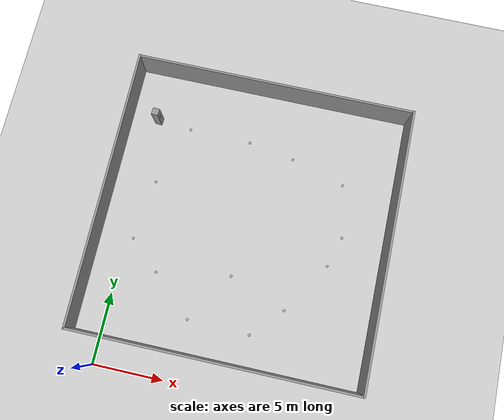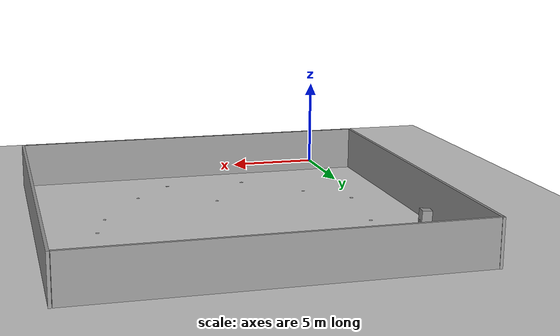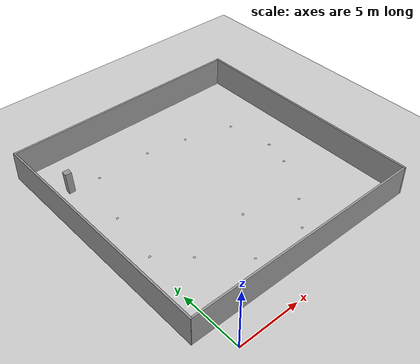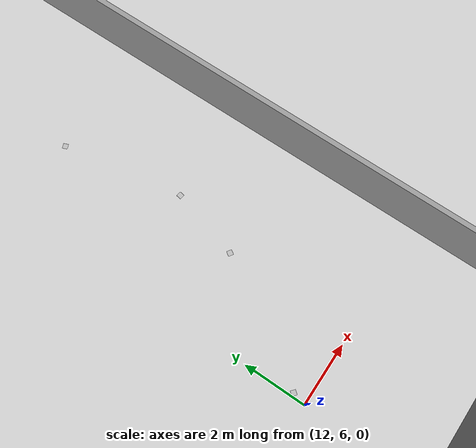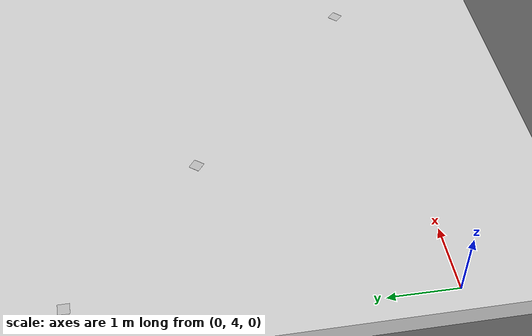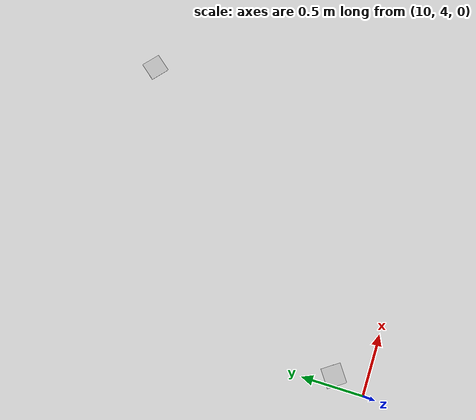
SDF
<sdf version="1.6">
 <world name="default">
  <model name="ground_plane">
   <static>1</static>
   <link name="link">
    <collision name="collision">
     <geometry><plane><normal>0 0 1</normal><size>100 100</size></plane></geometry>
     <surface>
      <contact><collide_bitmask>65535</collide_bitmask></contact>
      <friction><ode><mu>100</mu><mu2>50</mu2></ode></friction>
     </surface>
    </collision>
    <visual name="visual">
     <cast_shadows>0</cast_shadows>
     <geometry><plane><normal>0 0 1</normal><size>100 100</size></plane></geometry>
     <material>
      <script><uri>file://media/materials/scripts/gazebo.material</uri><name>Gazebo/Grey</name></script>
     </material>
    </visual>
   </link>
  </model>
  <light name="sun" type="directional">
   <pose>0 0 10 0 -0 0</pose>
   <diffuse>0.8 0.8 0.8 1</diffuse>
   <specular>0.2 0.2 0.2 1</specular>
   <attenuation>
    <range>1000</range>
    <constant>0.9</constant>
    <linear>0.01</linear>
    <quadratic>0.001</quadratic>
   </attenuation>
   <direction>-0.5 0.1 -0.9</direction>
  </light>
  <gravity>0 0 -9.8</gravity>
  <magnetic_field>6e-06 2.3e-05 -4.2e-05</magnetic_field>
  <atmosphere type="adiabatic"/>
  <physics name="default_physics" default="0" type="ode">
   <max_step_size>0.001</max_step_size>
   <real_time_factor>1</real_time_factor>
   <real_time_update_rate>1000</real_time_update_rate>
  </physics>
  <scene><ambient>0.4 0.4 0.4 1</ambient><background>0.7 0.7 0.7 1</background><shadows>1</shadows></scene>
  <audio><device>default</device></audio>
  <spherical_coordinates>
   <surface_model>EARTH_WGS84</surface_model>
   <latitude_deg>0</latitude_deg>
   <longitude_deg>0</longitude_deg>
   <elevation>0</elevation>
   <heading_deg>0</heading_deg>
  </spherical_coordinates>
  <model name="testbuilding">
   <link name="Wall_15">
    <pose>-5.52087 -13.8562 0 0 -0 3.14159</pose>
    <inertial>
     <mass>1</mass>
     <inertia><ixx>1</ixx><ixy>0</ixy><ixz>0</ixz><iyy>1</iyy><iyz>0</iyz><izz>1</izz></inertia>
    </inertial>
    <visual name="Wall_15_Visual">
     <pose>0 0 1.25 0 -0 0</pose>
     <geometry><box><size>20 0.15 2.5</size></box></geometry>
     <material>
      <script><uri>file://media/materials/scripts/gazebo.material</uri><name>Gazebo/Grey</name></script>
      <ambient>1 1 1 1</ambient>
      <shader type="vertex"><normal_map>__default__</normal_map></shader>
      <diffuse>0.7 0.7 0.7 1</diffuse>
      <specular>0.01 0.01 0.01 1</specular>
      <emissive>0 0 0 1</emissive>
     </material>
     <meta><layer>0</layer></meta>
    </visual>
    <collision name="Wall_15_Collision">
     <pose>0 0 1.25 0 -0 0</pose>
     <geometry><box><size>20 0.15 2.5</size></box></geometry>
     <surface>
      <friction>
       <ode><mu>1</mu><mu2>1</mu2><fdir1>0 0 0</fdir1><slip1>0</slip1><slip2>0</slip2></ode>
       <torsional>
        <coefficient>1</coefficient>
        <patch_radius>0</patch_radius>
        <surface_radius>0</surface_radius>
        <use_patch_radius>1</use_patch_radius>
        <ode><slip>0</slip></ode>
       </torsional>
      </friction>
      <bounce><restitution_coefficient>0</restitution_coefficient><threshold>1e+06</threshold></bounce>
      <contact>
       <collide_without_contact>0</collide_without_contact>
       <collide_without_contact_bitmask>1</collide_without_contact_bitmask>
       <collide_bitmask>1</collide_bitmask>
       <ode>
        <soft_cfm>0</soft_cfm>
        <soft_erp>0.2</soft_erp>
        <kp>1e+13</kp>
        <kd>1</kd>
        <max_vel>0.01</max_vel>
        <min_depth>0</min_depth>
       </ode>
       <bullet>
        <split_impulse>1</split_impulse>
        <split_impulse_penetration_threshold>-0.01</split_impulse_penetration_threshold>
        <soft_cfm>0</soft_cfm>
        <soft_erp>0.2</soft_erp>
        <kp>1e+13</kp>
        <kd>1</kd>
       </bullet>
      </contact>
     </surface>
    </collision>
   </link>
   <link name="Wall_15_clone">
    <pose>-5.54298 5.97578 0 0 -0 3.14159</pose>
    <inertial>
     <mass>1</mass>
     <inertia><ixx>1</ixx><ixy>0</ixy><ixz>0</ixz><iyy>1</iyy><iyz>0</iyz><izz>1</izz></inertia>
    </inertial>
    <visual name="Wall_15_Visual">
     <pose>0 0 1.25 0 -0 0</pose>
     <geometry><box><size>20 0.15 2.5</size></box></geometry>
     <material>
      <script><uri>file://media/materials/scripts/gazebo.material</uri><name>Gazebo/Grey</name></script>
      <ambient>1 1 1 1</ambient>
      <shader type="vertex"><normal_map>__default__</normal_map></shader>
      <diffuse>0.7 0.7 0.7 1</diffuse>
      <specular>0.01 0.01 0.01 1</specular>
      <emissive>0 0 0 1</emissive>
     </material>
     <meta><layer>0</layer></meta>
    </visual>
    <collision name="Wall_15_Collision">
     <pose>0 0 1.25 0 -0 0</pose>
     <geometry><box><size>20 0.15 2.5</size></box></geometry>
     <surface>
      <friction>
       <ode><mu>1</mu><mu2>1</mu2><fdir1>0 0 0</fdir1><slip1>0</slip1><slip2>0</slip2></ode>
       <torsional>
        <coefficient>1</coefficient>
        <patch_radius>0</patch_radius>
        <surface_radius>0</surface_radius>
        <use_patch_radius>1</use_patch_radius>
        <ode><slip>0</slip></ode>
       </torsional>
      </friction>
      <bounce><restitution_coefficient>0</restitution_coefficient><threshold>1e+06</threshold></bounce>
      <contact>
       <collide_without_contact>0</collide_without_contact>
       <collide_without_contact_bitmask>1</collide_without_contact_bitmask>
       <collide_bitmask>1</collide_bitmask>
       <ode>
        <soft_cfm>0</soft_cfm>
        <soft_erp>0.2</soft_erp>
        <kp>1e+13</kp>
        <kd>1</kd>
        <max_vel>0.01</max_vel>
        <min_depth>0</min_depth>
       </ode>
       <bullet>
        <split_impulse>1</split_impulse>
        <split_impulse_penetration_threshold>-0.01</split_impulse_penetration_threshold>
        <soft_cfm>0</soft_cfm>
        <soft_erp>0.2</soft_erp>
        <kp>1e+13</kp>
        <kd>1</kd>
       </bullet>
      </contact>
     </surface>
    </collision>
   </link>
   <link name="Wall_15_clone_clone">
    <pose>4.55954 -3.92992 0 0 -0 1.5708</pose>
    <inertial>
     <mass>1</mass>
     <inertia><ixx>1</ixx><ixy>0</ixy><ixz>0</ixz><iyy>1</iyy><iyz>0</iyz><izz>1</izz></inertia>
    </inertial>
    <visual name="Wall_15_Visual">
     <pose>0 0 1.25 0 -0 0</pose>
     <geometry><box><size>20 0.15 2.5</size></box></geometry>
     <material>
      <script><uri>file://media/materials/scripts/gazebo.material</uri><name>Gazebo/Grey</name></script>
      <ambient>1 1 1 1</ambient>
      <shader type="vertex"><normal_map>__default__</normal_map></shader>
      <diffuse>0.7 0.7 0.7 1</diffuse>
      <specular>0.01 0.01 0.01 1</specular>
      <emissive>0 0 0 1</emissive>
     </material>
     <meta><layer>0</layer></meta>
    </visual>
    <collision name="Wall_15_Collision">
     <pose>0 0 1.25 0 -0 0</pose>
     <geometry><box><size>20 0.15 2.5</size></box></geometry>
     <surface>
      <friction>
       <ode><mu>1</mu><mu2>1</mu2><fdir1>0 0 0</fdir1><slip1>0</slip1><slip2>0</slip2></ode>
       <torsional>
        <coefficient>1</coefficient>
        <patch_radius>0</patch_radius>
        <surface_radius>0</surface_radius>
        <use_patch_radius>1</use_patch_radius>
        <ode><slip>0</slip></ode>
       </torsional>
      </friction>
      <bounce><restitution_coefficient>0</restitution_coefficient><threshold>1e+06</threshold></bounce>
      <contact>
       <collide_without_contact>0</collide_without_contact>
       <collide_without_contact_bitmask>1</collide_without_contact_bitmask>
       <collide_bitmask>1</collide_bitmask>
       <ode>
        <soft_cfm>0</soft_cfm>
        <soft_erp>0.2</soft_erp>
        <kp>1e+13</kp>
        <kd>1</kd>
        <max_vel>0.01</max_vel>
        <min_depth>0</min_depth>
       </ode>
       <bullet>
        <split_impulse>1</split_impulse>
        <split_impulse_penetration_threshold>-0.01</split_impulse_penetration_threshold>
        <soft_cfm>0</soft_cfm>
        <soft_erp>0.2</soft_erp>
        <kp>1e+13</kp>
        <kd>1</kd>
       </bullet>
      </contact>
     </surface>
    </collision>
   </link>
   <link name="Wall_15_clone_clone_clone">
    <pose>-15.4862 -3.92822 0 0 -0 1.5708</pose>
    <inertial>
     <mass>1</mass>
     <inertia><ixx>1</ixx><ixy>0</ixy><ixz>0</ixz><iyy>1</iyy><iyz>0</iyz><izz>1</izz></inertia>
    </inertial>
    <visual name="Wall_15_Visual">
     <pose>0 0 1.25 0 -0 0</pose>
     <geometry><box><size>20 0.15 2.5</size></box></geometry>
     <material>
      <script><uri>file://media/materials/scripts/gazebo.material</uri><name>Gazebo/Grey</name></script>
      <ambient>1 1 1 1</ambient>
      <shader type="vertex"><normal_map>__default__</normal_map></shader>
      <diffuse>0.7 0.7 0.7 1</diffuse>
      <specular>0.01 0.01 0.01 1</specular>
      <emissive>0 0 0 1</emissive>
     </material>
     <meta><layer>0</layer></meta>
    </visual>
    <collision name="Wall_15_Collision">
     <pose>0 0 1.25 0 -0 0</pose>
     <geometry><box><size>20 0.15 2.5</size></box></geometry>
     <surface>
      <friction>
       <ode><mu>1</mu><mu2>1</mu2><fdir1>0 0 0</fdir1><slip1>0</slip1><slip2>0</slip2></ode>
       <torsional>
        <coefficient>1</coefficient>
        <patch_radius>0</patch_radius>
        <surface_radius>0</surface_radius>
        <use_patch_radius>1</use_patch_radius>
        <ode><slip>0</slip></ode>
       </torsional>
      </friction>
      <bounce><restitution_coefficient>0</restitution_coefficient><threshold>1e+06</threshold></bounce>
      <contact>
       <collide_without_contact>0</collide_without_contact>
       <collide_without_contact_bitmask>1</collide_without_contact_bitmask>
       <collide_bitmask>1</collide_bitmask>
       <ode>
        <soft_cfm>0</soft_cfm>
        <soft_erp>0.2</soft_erp>
        <kp>1e+13</kp>
        <kd>1</kd>
        <max_vel>0.01</max_vel>
        <min_depth>0</min_depth>
       </ode>
       <bullet>
        <split_impulse>1</split_impulse>
        <split_impulse_penetration_threshold>-0.01</split_impulse_penetration_threshold>
        <soft_cfm>0</soft_cfm>
        <soft_erp>0.2</soft_erp>
        <kp>1e+13</kp>
        <kd>1</kd>
       </bullet>
      </contact>
     </surface>
    </collision>
   </link>
   <static>1</static>
   <pose>13.5614 15.9012 -0.099989 0 -0 0</pose>
  </model>
  <model name="Tag0">
   <static>1</static>
   <pose>2.58749 17.9838 0 -1.5708 0 0</pose>
   <link name="link">
    <gravity>0</gravity>
    <visual name="visual">
     <cast_shadows>0</cast_shadows>
     <geometry><box><size>0.1615 0.001 0.1615</size></box></geometry>
     <material>
      <script>
       <uri>model://Tag0/materials/scripts</uri>
       <uri>model://Tag0/materials/textures</uri>
       <name>vrc/Tag0</name>
      </script>
     </material>
    </visual>
    <collision name="collision"><geometry><box><size>0.1615 0.001 0.1615</size></box></geometry></collision>
   </link>
  </model>
  <model name="Tag1">
   <static>1</static>
   <pose>7.11539 17.9436 0 -1.5708 0 -0.0464</pose>
   <link name="link">
    <gravity>0</gravity>
    <visual name="visual">
     <cast_shadows>0</cast_shadows>
     <geometry><box><size>0.1615 0.001 0.1615</size></box></geometry>
     <material>
      <script>
       <uri>model://Tag1/materials/scripts</uri>
       <uri>model://Tag1/materials/textures</uri>
       <name>vrc/Tag1</name>
      </script>
     </material>
    </visual>
    <collision name="collision"><geometry><box><size>0.1615 0.001 0.1615</size></box></geometry></collision>
   </link>
  </model>
  <model name="Tag2">
   <static>1</static>
   <pose>10.4867 17.3426 0 -1.5708 -1e-06 -0.207125</pose>
   <link name="link">
    <gravity>0</gravity>
    <visual name="visual">
     <cast_shadows>0</cast_shadows>
     <geometry><box><size>0.1615 0.001 0.1615</size></box></geometry>
     <material>
      <script>
       <uri>model://Tag2/materials/scripts</uri>
       <uri>model://Tag2/materials/textures</uri>
       <name>vrc/Tag2</name>
      </script>
     </material>
    </visual>
    <collision name="collision"><geometry><box><size>0.1615 0.001 0.1615</size></box></geometry></collision>
   </link>
  </model>
  <model name="Tag3">
   <static>1</static>
   <pose>14.4318 16.1992 0 -1.5708 -4e-06 -1.18845</pose>
   <link name="link">
    <gravity>0</gravity>
    <visual name="visual">
     <cast_shadows>0</cast_shadows>
     <geometry><box><size>0.1615 0.001 0.1615</size></box></geometry>
     <material>
      <script>
       <uri>model://Tag3/materials/scripts</uri>
       <uri>model://Tag3/materials/textures</uri>
       <name>vrc/Tag3</name>
      </script>
     </material>
    </visual>
    <collision name="collision"><geometry><box><size>0.1615 0.001 0.1615</size></box></geometry></collision>
   </link>
  </model>
  <model name="Tag5">
   <static>1</static>
   <pose>14.448 10.1555 1.5e-05 -1.57079 -2e-06 -2.16221</pose>
   <link name="link">
    <gravity>0</gravity>
    <visual name="visual">
     <cast_shadows>0</cast_shadows>
     <geometry><box><size>0.1615 0.001 0.1615</size></box></geometry>
     <material>
      <script>
       <uri>model://Tag5/materials/scripts</uri>
       <uri>model://Tag5/materials/textures</uri>
       <name>vrc/Tag5</name>
      </script>
     </material>
    </visual>
    <collision name="collision"><geometry><box><size>0.1615 0.001 0.1615</size></box></geometry></collision>
   </link>
  </model>
  <model name="Tag7">
   <static>1</static>
   <pose>10.0843 4.26168 0 -1.57079 5e-06 2.17584</pose>
   <link name="link">
    <gravity>0</gravity>
    <visual name="visual">
     <cast_shadows>0</cast_shadows>
     <geometry><box><size>0.1615 0.001 0.1615</size></box></geometry>
     <material>
      <script>
       <uri>model://Tag7/materials/scripts</uri>
       <uri>model://Tag7/materials/textures</uri>
       <name>vrc/Tag7</name>
      </script>
     </material>
    </visual>
    <collision name="collision"><geometry><box><size>0.1615 0.001 0.1615</size></box></geometry></collision>
   </link>
  </model>
  <model name="Tag8">
   <static>1</static>
   <pose>7.93653 7.97574 0 -1.57079 -3e-06 -2.16835</pose>
   <link name="link">
    <gravity>0</gravity>
    <visual name="visual">
     <cast_shadows>0</cast_shadows>
     <geometry><box><size>0.1615 0.001 0.1615</size></box></geometry>
     <material>
      <script>
       <uri>model://Tag8/materials/scripts</uri>
       <uri>model://Tag8/materials/textures</uri>
       <name>vrc/Tag8</name>
      </script>
     </material>
    </visual>
    <collision name="collision"><geometry><box><size>0.1615 0.001 0.1615</size></box></geometry></collision>
   </link>
  </model>
  <model name="Tag9">
   <static>1</static>
   <pose>5.62682 4.37676 0.001 -1.57079 3e-06 2.39602</pose>
   <link name="link">
    <gravity>0</gravity>
    <visual name="visual">
     <cast_shadows>0</cast_shadows>
     <geometry><box><size>0.1615 0.001 0.1615</size></box></geometry>
     <material>
      <script>
       <uri>model://Tag9/materials/scripts</uri>
       <uri>model://Tag9/materials/textures</uri>
       <name>vrc/Tag9</name>
      </script>
     </material>
    </visual>
    <collision name="collision"><geometry><box><size>0.1615 0.001 0.1615</size></box></geometry></collision>
   </link>
  </model>
  <model name="Tag10">
   <static>1</static>
   <pose>2.67583 7.10427 -8e-06 -1.57079 6e-06 2.47044</pose>
   <link name="link">
    <gravity>0</gravity>
    <visual name="visual">
     <cast_shadows>0</cast_shadows>
     <geometry><box><size>0.1615 0.001 0.1615</size></box></geometry>
     <material>
      <script>
       <uri>model://Tag10/materials/scripts</uri>
       <uri>model://Tag10/materials/textures</uri>
       <name>vrc/Tag10</name>
      </script>
     </material>
    </visual>
    <collision name="collision"><geometry><box><size>0.1615 0.001 0.1615</size></box></geometry></collision>
   </link>
  </model>
  <model name="tagged_person_8">
   <link name="link_1">
    <pose>-0 -0 0.291114 0 -0 0</pose>
    <inertial>
     <mass>1</mass>
     <inertia>
      <ixx>0.166667</ixx>
      <ixy>0</ixy>
      <ixz>0</ixz>
      <iyy>0.166667</iyy>
      <iyz>0</iyz>
      <izz>0.166667</izz>
     </inertia>
    </inertial>
    <kinematic>1</kinematic>
    <visual name="visual">
     <geometry><box><size>0.5 0.5 1.8</size></box></geometry>
     <material>
      <lighting>1</lighting>
      <script><uri>file://media/materials/scripts/gazebo.material</uri><name>Gazebo/Grey</name></script>
      <ambient>0.3 0.3 0.3 1</ambient>
      <diffuse>0.7 0.7 0.7 1</diffuse>
      <specular>0.01 0.01 0.01 1</specular>
      <emissive>0 0 0 1</emissive>
      <shader type="vertex"><normal_map>__default__</normal_map></shader>
     </material>
    </visual>
    <collision name="collision">
     <geometry><box><size>0.5 0.5 1.8</size></box></geometry>
     <surface>
      <friction>
       <ode><mu>1</mu><mu2>1</mu2><fdir1>0 0 0</fdir1><slip1>0</slip1><slip2>0</slip2></ode>
       <torsional>
        <coefficient>1</coefficient>
        <patch_radius>0</patch_radius>
        <surface_radius>0</surface_radius>
        <use_patch_radius>1</use_patch_radius>
        <ode><slip>0</slip></ode>
       </torsional>
      </friction>
      <bounce><restitution_coefficient>0</restitution_coefficient><threshold>1e+06</threshold></bounce>
      <contact>
       <collide_without_contact>0</collide_without_contact>
       <collide_without_contact_bitmask>1</collide_without_contact_bitmask>
       <collide_bitmask>1</collide_bitmask>
       <ode>
        <soft_cfm>0</soft_cfm>
        <soft_erp>0.2</soft_erp>
        <kp>1e+13</kp>
        <kd>1</kd>
        <max_vel>0.01</max_vel>
        <min_depth>0</min_depth>
       </ode>
       <bullet>
        <split_impulse>1</split_impulse>
        <split_impulse_penetration_threshold>-0.01</split_impulse_penetration_threshold>
        <soft_cfm>0</soft_cfm>
        <soft_erp>0.2</soft_erp>
        <kp>1e+13</kp>
        <kd>1</kd>
       </bullet>
      </contact>
     </surface>
    </collision>
   </link>
   <model name="Tag128">
    <static>1</static>
    <link name="link">
     <gravity>0</gravity>
     <visual name="visual">
      <cast_shadows>0</cast_shadows>
      <geometry><box><size>0.1615 0.001 0.1615</size></box></geometry>
      <material>
       <script>
        <uri>model://Tag128/materials/scripts</uri>
        <uri>model://Tag128/materials/textures</uri>
        <name>vrc/Tag128</name>
       </script>
      </material>
     </visual>
     <collision name="collision"><geometry><box><size>0.1615 0.001 0.1615</size></box></geometry></collision>
    </link>
    <pose>-0.016301 -0.255949 0.592107 0 -0 0</pose>
   </model>
   <joint name="link_1_JOINT_3" type="fixed">
    <parent>link_1</parent>
    <child>Tag128::link</child>
    <physics>
     <ode><limit><cfm>0</cfm><erp>0.2</erp></limit><suspension><cfm>0</cfm><erp>0.2</erp></suspension></ode>
    </physics>
   </joint>
   <static>1</static>
   <pose>0.152237 18.1405 0.637782 -0.04826 0.018194 1.48578</pose>
  </model>
  <model name="Tag4_0">
   <static>1</static>
   <pose>15.0868 12.3803 4e-06 -1.5708 -4e-06 -1.76845</pose>
   <link name="link">
    <gravity>0</gravity>
    <visual name="visual">
     <cast_shadows>0</cast_shadows>
     <geometry><box><size>0.1615 0.001 0.1615</size></box></geometry>
     <material>
      <script>
       <uri>model://Tag4/materials/scripts</uri>
       <uri>model://Tag4/materials/textures</uri>
       <name>vrc/Tag4</name>
      </script>
     </material>
    </visual>
    <collision name="collision"><geometry><box><size>0.1615 0.001 0.1615</size></box></geometry></collision>
   </link>
  </model>
  <model name="Tag6_0">
   <static>1</static>
   <pose>12.1107 6.43358 0 -1.57079 -3e-06 -2.26247</pose>
   <link name="link">
    <gravity>0</gravity>
    <visual name="visual">
     <cast_shadows>0</cast_shadows>
     <geometry><box><size>0.1615 0.001 0.1615</size></box></geometry>
     <material>
      <script>
       <uri>model://Tag6/materials/scripts</uri>
       <uri>model://Tag6/materials/textures</uri>
       <name>vrc/Tag6</name>
      </script>
     </material>
    </visual>
    <collision name="collision"><geometry><box><size>0.1615 0.001 0.1615</size></box></geometry></collision>
   </link>
  </model>
  <model name="Tag11">
   <static>1</static>
   <pose>0.482452 9.12237 0 -1.5708 4e-06 1.57233</pose>
   <link name="link">
    <gravity>0</gravity>
    <visual name="visual">
     <cast_shadows>0</cast_shadows>
     <geometry><box><size>0.1615 0.001 0.1615</size></box></geometry>
     <material>
      <script>
       <uri>model://Tag11/materials/scripts</uri>
       <uri>model://Tag11/materials/textures</uri>
       <name>vrc/Tag11</name>
      </script>
     </material>
    </visual>
    <collision name="collision"><geometry><box><size>0.1615 0.001 0.1615</size></box></geometry></collision>
   </link>
  </model>
  <model name="Tag12">
   <static>1</static>
   <pose>1.02845 13.5293 0 -1.5708 4e-06 1.4034</pose>
   <link name="link">
    <gravity>0</gravity>
    <visual name="visual">
     <cast_shadows>0</cast_shadows>
     <geometry><box><size>0.1615 0.001 0.1615</size></box></geometry>
     <material>
      <script>
       <uri>model://Tag12/materials/scripts</uri>
       <uri>model://Tag12/materials/textures</uri>
       <name>vrc/Tag12</name>
      </script>
     </material>
    </visual>
    <collision name="collision"><geometry><box><size>0.1615 0.001 0.1615</size></box></geometry></collision>
   </link>
  </model>
 </world>
</sdf>
